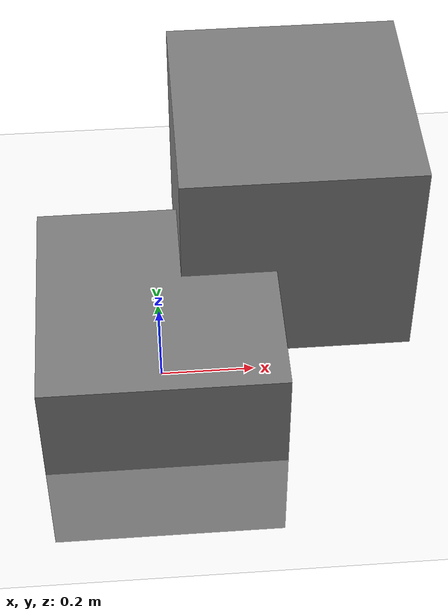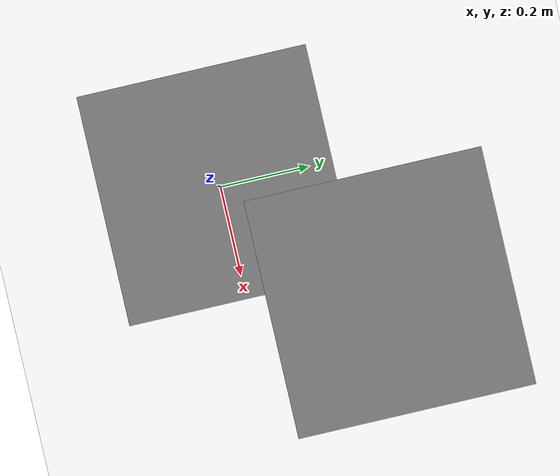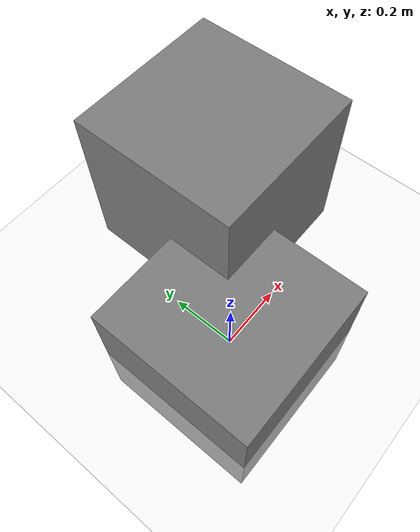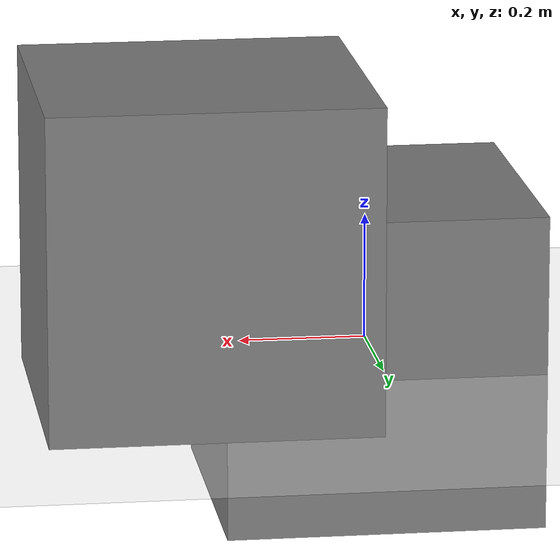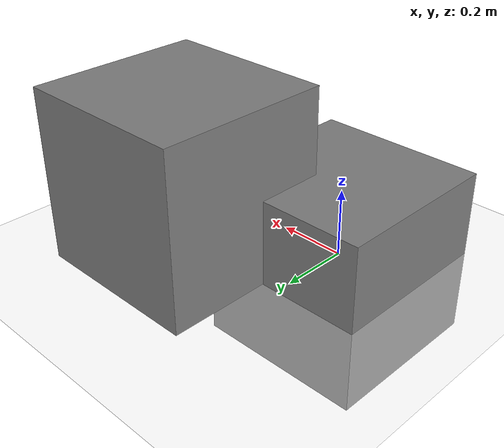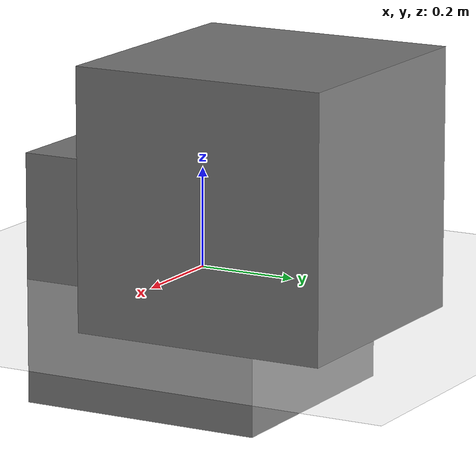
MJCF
<mujoco model="empty">
    <option timestep="0.001" gravity="0 0 -9.81" cone="elliptic" />
    <compiler angle="radian" />

    <visual>
        <headlight ambient="0.4 0.4 0.4" diffuse="0.4 0.4 0.4" specular="0.0 0.0 0.0" active="1" />
    </visual>

    <asset>
        <texture builtin="checker" height="512" name="texplane" rgb1=".2 .3 .4" rgb2=".1 .15 .2" type="2d" width="512" />
        <material name="MatPlane" reflectance="0.5" shininess="0.01" specular="0.1" texrepeat="1 1" texture="texplane" texuniform="true" />
    </asset>

    <worldbody>
        <light pos="0 0 1000" castshadow="false" />
        <body name="mocap" mocap="true" >
            <geom type="box" size="0.25 0.25 0.25"/>
        </body>

        <body name="mocap2" mocap="true" pos="0.3 0.3 0.25">
            <geom type="box" size="0.25 0.25 0.25" contype="0" conaffinity="0" rgba="1.0 0 0 0.5" />
        </body>

        <body name="box" pos="0.3 0.3 0.25">
            <joint name="box_joint" type="free" />
            <geom type="box" size="0.25 0.25 0.25"/>
        </body>
        <geom name="ground_plane" type="plane" size="5 5 10" material="MatPlane" rgba="1 1 1 1"/>
    </worldbody>

    <equality>
        <weld body1="mocap2" body2="box" active="true"/>
    </equality>
</mujoco>
